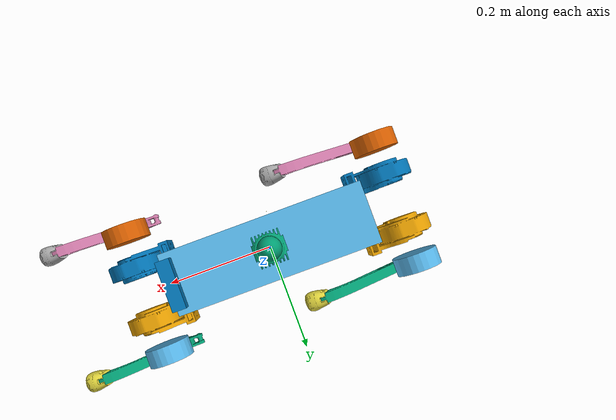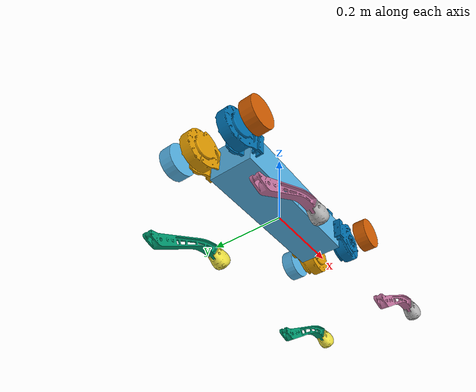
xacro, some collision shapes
<?xml version="1.0"?>

<robot name="hustdog2" xmlns:xacro="http://www.ros.org/wiki/xacro">

    <xacro:arg name="DEBUG" default="false"/>

    <xacro:include filename="const.xacro"/>
    <xacro:include filename="materials.xacro"/>
    <!-- use explicit per-leg definitions that match hustdog2.urdf -->
    <xacro:include filename="legnew.xacro"/>
    <!-- include transmissions so gazebo_ros_control registers effort joints -->
    <xacro:include filename="depthCamera.xacro"/>
    <xacro:include filename="ultraSound.xacro"/>

    <!-- Debug mode will hung up the robot, use "true" or "false" to switch it. -->
    <xacro:if value="$(arg DEBUG)">
        <link name="world"/>
        <joint name="base_static_joint" type="fixed">
            <origin rpy="0 0 0" xyz="0 0 0"/>
            <parent link="world"/>
            <child link="base_link"/>
        </joint>
    </xacro:if>

    <link name="base_link">
        <visual>
            <origin rpy="0 0 0" xyz="0 0 0"/>
            <geometry>
                <box size="0.001 0.001 0.001"/>
            </geometry>
        </visual>
    </link>

    <joint name="base_link_to_trunk" type="fixed">
        <origin rpy="0 0 0" xyz="0 0 0"/>
        <parent link="base_link"/>
        <child link="trunk"/>
    </joint>

    <link name="trunk">
        <visual>
            <origin rpy="0 0 0" xyz="0 0 0"/>
            <geometry>
                <mesh filename="../meshes/trunk.STL" scale="1 1 1"/>
            </geometry>
        </visual>
        <collision>
            <origin rpy="0 0 0" xyz="${trunk_com_x} ${trunk_com_y} ${trunk_com_z}"/>
            <geometry>
                <box size="${trunk_length} ${trunk_width} ${trunk_height}"/>
            </geometry>
        </collision>
        <inertial>
            <origin rpy="0 0 0" xyz="${trunk_com_x} ${trunk_com_y} ${trunk_com_z}"/>
            <mass value="${trunk_mass}"/>
            <inertia
                ixx="${trunk_ixx}" ixy="${trunk_ixy}" ixz="${trunk_ixz}"
                iyy="${trunk_iyy}" iyz="${trunk_iyz}"
                izz="${trunk_izz}"/>
        </inertial>
    </link>

    <!-- LIDAR (aligned to hustdog2.urdf) -->
    <link name="LIDAR">
        <inertial>
            <origin xyz="0.000199578579167744 5.56978729826113E-06 0.0930321007689041" rpy="0 0 0"/>
            <mass value="0.141887346048767"/>
            <inertia ixx="4.17977400205789E-05" ixy="-5.52625156952412E-09" ixz="-3.05328898604069E-07" iyy="4.50773279990884E-05" iyz="4.39725037239413E-10" izz="6.87998253582212E-05"/>
        </inertial>
        <visual>
            <origin xyz="0 0 0" rpy="0 0 0"/>
            <geometry>
                <mesh filename="../meshes/LIDAR.STL" scale="1 1 1"/>
            </geometry>
        </visual>
        <collision>
            <origin xyz="0.000199578579167744 5.56978729826113E-06 0.0930321007689041" rpy="0 0 0"/>
            <geometry>
                <cylinder length="0.04" radius="0.035"/>
            </geometry>
        </collision>
    </link>

    <joint name="LIDAR" type="fixed">
        <origin xyz="0 0 0" rpy="0 0 0"/>
        <parent link="trunk"/>
        <child link="LIDAR"/>
    </joint>

    <joint name="imu_joint" type="fixed">
        <parent link="trunk"/>
        <child link="imu_link"/>
        <origin rpy="0 0 0" xyz="-0.01592 -0.06659 -0.00617"/>
    </joint>

    <link name="imu_link">
        <inertial>
            <mass value="0.001"/>
            <origin rpy="0 0 0" xyz="0 0 0"/>
            <inertia ixx="0.0001" ixy="0" ixz="0" iyy="0.0001" iyz="0" izz="0.0001"/>
        </inertial>
        <visual>
            <origin rpy="0 0 0" xyz="0 0 0"/>
            <geometry>
                <box size="0.001 0.001 0.001"/>
            </geometry>
        </visual>
        <collision>
            <origin rpy="0 0 0" xyz="0 0 0"/>
            <geometry>
                <box size=".001 .001 .001"/>
            </geometry>
        </collision>
    </link>

    <!-- instantiate explicit per-leg macros (match hustdog2.urdf) -->
    <xacro:leg_FR/>
    <xacro:leg_FL/>
    <xacro:leg_RR/>
    <xacro:leg_RL/>

    <!-- Replaced five depthCamera instances with the single CAMERA link from hustdog2.urdf -->
    <xacro:depthCamera camID="1" name="CAMERA"
        xyz="${camera_offset_x} ${camera_offset_y} ${camera_offset_z}"
        visual_xyz="${-camera_offset_x} ${-camera_offset_y} ${-camera_offset_z}">
    </xacro:depthCamera>

</robot>

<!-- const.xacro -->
<robot xmlns:xacro="http://www.ros.org/wiki/xacro">

  <!-- Constants for hustdog2 (merged and normalized) -->
  <xacro:property name="PI" value="3.1415926535897931"/>
  <xacro:property name="stick_mass" value="0.00001"/>

  <!-- visual / collision helpers -->
  <xacro:property name="trunk_width" value="0.114"/>
  <xacro:property name="trunk_length" value="0.3762"/>
  <xacro:property name="trunk_height" value="0.0935"/>
  <xacro:property name="hip_radius" value="0.046"/>
  <xacro:property name="hip_length" value="0.04"/>
  <xacro:property name="thigh_shoulder_radius" value="0.041"/>
  <xacro:property name="thigh_shoulder_length" value="0.032"/>
  <xacro:property name="thigh_width" value="0.0245"/>
  <xacro:property name="thigh_height" value="0.034"/>
  <xacro:property name="calf_width" value="0.016"/>
  <xacro:property name="calf_height" value="0.016"/>
  <xacro:property name="foot_radius" value="0.02"/>
  <xacro:property name="stick_radius" value="0.01"/>
  <xacro:property name="stick_length" value="0.2"/>

  <!-- kinematic / link lengths (values taken from hustdog2.urdf) -->
  <xacro:property name="abad_length" value="0.085"/>
  <xacro:property name="hip_link_length" value="0.072"/> <!-- hip->thigh (URDF joint origin: 0.072 0 0) -->
  <xacro:property name="thigh_length" value="0.072"/> <!-- alias for hip_link_length for compatibility -->
  <xacro:property name="calf_link_length" value="0.22"/> <!-- thigh->calf (URDF joint origin z = -0.22) -->
  <xacro:property name="calf_length" value="0.22"/> <!-- alias for compatibility -->

  <!-- hip / leg offsets relative to trunk center (from URDF hip joint origins) -->
  <xacro:property name="hip_offset_x" value="0.1666"/>
  <xacro:property name="hip_offset_y" value="0.051996"/>
  <xacro:property name="hip_offset_z" value="0.052"/>
  <!-- legacy/alternate names kept for compatibility -->
  <xacro:property name="leg_offset_x" value="0.1666"/>
  <xacro:property name="leg_offset_y" value="0.051996"/>
  <xacro:property name="hip_offset" value="0.072"/>

  <!-- compatibility / convenience: thigh_offset used by leg.xacro (hip->thigh joint origin) -->
  <xacro:property name="thigh_offset" value="${hip_link_length}"/>

  <xacro:property name="hip_lower" value="-0.6674139"/>
  <xacro:property name="hip_upper" value="0.6674139"/>
  <xacro:property name="hip_effort" value="23.7"/>
  <xacro:property name="hip_velocity" value="30.0"/>

  <xacro:property name="thigh_lower" value="-0.1309"/>
  <xacro:property name="thigh_upper" value="1.7017"/>
  <xacro:property name="thigh_effort" value="23.7"/>
  <xacro:property name="thigh_velocity" value="30.0"/>

  <xacro:property name="calf_lower" value="-2.9123"/>
  <xacro:property name="calf_upper" value="-1.2542"/>
  <xacro:property name="calf_effort" value="23.7"/>
  <xacro:property name="calf_velocity" value="30.0"/>

  <xacro:property name="damping" value="0.0"/>
  <xacro:property name="friction" value="0.0"/>

  <!-- compatibility aliases for legacy names used in other xacros -->
  <xacro:property name="hip_torque_max" value="${hip_effort}"/>
  <xacro:property name="hip_velocity_max" value="${hip_velocity}"/>
  <xacro:property name="hip_position_min" value="${hip_lower}"/>
  <xacro:property name="hip_position_max" value="${hip_upper}"/>

  <xacro:property name="thigh_torque_max" value="${thigh_effort}"/>
  <xacro:property name="thigh_velocity_max" value="${thigh_velocity}"/>
  <xacro:property name="thigh_position_min" value="${thigh_lower}"/>
  <xacro:property name="thigh_position_max" value="${thigh_upper}"/>

  <xacro:property name="calf_torque_max" value="${calf_effort}"/>
  <xacro:property name="calf_velocity_max" value="${calf_velocity}"/>
  <xacro:property name="calf_position_min" value="${calf_lower}"/>
  <xacro:property name="calf_position_max" value="${calf_upper}"/>

  <!-- inertial values: trunk, hip, thigh, calf, foot (copied from hustdog2.urdf) -->
  <!-- trunk -->
  <xacro:property name="trunk_mass" value="3.304"/>
  <xacro:property name="trunk_com_x" value="0.00014579412146028"/>
  <xacro:property name="trunk_com_y" value="-8.23603790256226E-05"/>
  <xacro:property name="trunk_com_z" value="0.0513141462721673"/>
  <xacro:property name="trunk_ixx" value="0.00246223133481107"/>
  <xacro:property name="trunk_ixy" value="1.22541568850732E-07"/>
  <xacro:property name="trunk_ixz" value="-1.86486894267769E-09"/>
  <xacro:property name="trunk_iyy" value="0.00300451040783408"/>
  <xacro:property name="trunk_iyz" value="-5.45851421140666E-10"/>
  <xacro:property name="trunk_izz" value="0.00369726469403937"/>

  <!-- hip (FR values used as representative for all hips) -->
  <xacro:property name="hip_mass" value="0.686"/>
  <xacro:property name="hip_com_x" value="0.061695"/>
  <xacro:property name="hip_com_y" value="-0.00025557"/>
  <xacro:property name="hip_com_z" value="7.6332E-05"/>
  <xacro:property name="hip_ixx" value="0.00015606"/>
  <xacro:property name="hip_ixy" value="-9.8829E-08"/>
  <xacro:property name="hip_ixz" value="3.6293E-07"/>
  <xacro:property name="hip_iyy" value="0.00025823"/>
  <xacro:property name="hip_iyz" value="3.0635E-08"/>
  <xacro:property name="hip_izz" value="0.00014337"/>

  <!-- thigh (FR values used as representative) -->
  <xacro:property name="thigh_mass" value="1.027"/>
  <xacro:property name="thigh_com_x" value="-0.00275078934112083"/>
  <xacro:property name="thigh_com_y" value="-0.061797306727413"/>
  <xacro:property name="thigh_com_z" value="-0.0659635539721172"/>
  <xacro:property name="thigh_ixx" value="0.000756603493555017"/>
  <xacro:property name="thigh_ixy" value="-7.92376228187542E-08"/>
  <xacro:property name="thigh_ixz" value="-4.17601614282535E-05"/>
  <xacro:property name="thigh_iyy" value="0.000910075280848094"/>
  <xacro:property name="thigh_iyz" value="-2.00894339422274E-08"/>
  <xacro:property name="thigh_izz" value="0.000175634171715802"/>

  <!-- calf (FR values used as representative) -->
  <xacro:property name="calf_mass" value="0.249"/>
  <xacro:property name="calf_com_x" value="-0.000290700643747477"/>
  <xacro:property name="calf_com_y" value="-0.0849759320544111"/>
  <xacro:property name="calf_com_z" value="-0.0645449884848464"/>
  <xacro:property name="calf_ixx" value="0.000215077167464886"/>
  <xacro:property name="calf_ixy" value="-1.03212973220742E-07"/>
  <xacro:property name="calf_ixz" value="-7.20760001508999E-06"/>
  <xacro:property name="calf_iyy" value="0.000218606842918735"/>
  <xacro:property name="calf_iyz" value="-2.83504164955069E-06"/>
  <xacro:property name="calf_izz" value="6.64639656615067E-06"/>

    <!-- foot (FR values used as representative) -->
  <xacro:property name="foot_mass" value="0.056"/>
  <xacro:property name="foot_com_x" value="-0.00408434501666199"/>
  <xacro:property name="foot_com_y" value="0.0851196204673925"/>
  <xacro:property name="foot_com_z" value="-0.00290914827275929"/>
  <xacro:property name="foot_ixx" value="1.46759140000492E-05"/>
  <xacro:property name="foot_ixy" value="-8.49482435630802E-08"/>
  <xacro:property name="foot_ixz" value="3.07254971706503E-06"/>
  <xacro:property name="foot_iyy" value="1.27945976674806E-05"/>
  <xacro:property name="foot_iyz" value="-3.13456863350562E-08"/>
  <xacro:property name="foot_izz" value="1.40635378188276E-05"/>

  <!-- small rotor prop / compatibility -->
  <!-- rotor offsets (hip/thigh/calf) - provide defaults so leg.xacro references resolve -->
  <xacro:property name="hip_rotor_offset_x" value="0.12"/>
  <xacro:property name="hip_rotor_offset_y" value="0.051996"/>
  <xacro:property name="hip_rotor_offset_z" value="0.0"/>

  <xacro:property name="thigh_rotor_offset_x" value="0.0"/>
  <xacro:property name="thigh_rotor_offset_y" value="0.02"/>
  <xacro:property name="thigh_rotor_offset_z" value="0.0"/>

  <xacro:property name="calf_rotor_offset_x" value="0.0"/>
  <xacro:property name="calf_rotor_offset_y" value="-0.09"/>
  <xacro:property name="calf_rotor_offset_z" value="0.0"/>

  <!-- rotor inertial defaults (small masses and inertias) -->
  <xacro:property name="hip_rotor_mass" value="0.05"/>
  <xacro:property name="hip_rotor_com_x" value="0.0"/>
  <xacro:property name="hip_rotor_com_y" value="0.0"/>
  <xacro:property name="hip_rotor_com_z" value="0.0"/>
  <xacro:property name="hip_rotor_ixx" value="0.00005"/>
  <xacro:property name="hip_rotor_ixy" value="0.0"/>
  <xacro:property name="hip_rotor_ixz" value="0.0"/>
  <xacro:property name="hip_rotor_iyy" value="0.00005"/>
  <xacro:property name="hip_rotor_iyz" value="0.0"/>
  <xacro:property name="hip_rotor_izz" value="0.00005"/>

  <xacro:property name="thigh_rotor_mass" value="0.03"/>
  <xacro:property name="thigh_rotor_com_x" value="0.0"/>
  <xacro:property name="thigh_rotor_com_y" value="0.0"/>
  <xacro:property name="thigh_rotor_com_z" value="0.0"/>
  <xacro:property name="thigh_rotor_ixx" value="0.00003"/>
  <xacro:property name="thigh_rotor_ixy" value="0.0"/>
  <xacro:property name="thigh_rotor_ixz" value="0.0"/>
  <xacro:property name="thigh_rotor_iyy" value="0.00003"/>
  <xacro:property name="thigh_rotor_iyz" value="0.0"/>
  <xacro:property name="thigh_rotor_izz" value="0.00003"/>

  <xacro:property name="calf_rotor_mass" value="0.02"/>
  <xacro:property name="calf_rotor_com_x" value="0.0"/>
  <xacro:property name="calf_rotor_com_y" value="0.0"/>
  <xacro:property name="calf_rotor_com_z" value="0.0"/>
  <xacro:property name="calf_rotor_ixx" value="0.00002"/>
  <xacro:property name="calf_rotor_ixy" value="0.0"/>
  <xacro:property name="calf_rotor_ixz" value="0.0"/>
  <xacro:property name="calf_rotor_iyy" value="0.00002"/>
  <xacro:property name="calf_rotor_iyz" value="0.0"/>
  <xacro:property name="calf_rotor_izz" value="0.00002"/>

  <!-- Camera Offset (Inertial origin from URDF) -->
  <xacro:property name="camera_offset_x" value="0.1775"/>
  <xacro:property name="camera_offset_y" value="0.0"/>
  <xacro:property name="camera_offset_z" value="0.1195004"/>

</robot>

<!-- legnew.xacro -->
<robot xmlns:xacro="http://www.ros.org/wiki/xacro">

  <xacro:macro name="leg_FR" params="">

    <!-- FR hip joint (from trunk to FR_hip) -->
    <joint name="FR_hip_joint" type="revolute">
      <origin rpy="0 0 0" xyz="0.1666 -0.051996 0.052"/>
      <parent link="trunk"/>
      <child link="FR_hip"/>
      <axis xyz="1 0 0"/>
      <dynamics damping="${damping}" friction="${friction}"/>
      <limit lower="${hip_lower}" upper="${hip_upper}" effort="${hip_effort}" velocity="${hip_velocity}"/>
    </joint>

    <link name="FR_hip">
      <visual>
        <origin rpy="0 0 0" xyz="0 0 0"/>
        <geometry>
          <mesh filename="../meshes/FR_hip.STL" scale="1 1 1"/>
        </geometry>
      </visual>
      <collision>
        <origin rpy="0 ${PI/2.0} 0" xyz="0 0 0"/>
        <geometry>
          <cylinder length="${hip_length}" radius="${hip_radius}"/>
        </geometry>
      </collision>
      <inertial>
        <origin rpy="0 0 0" xyz="${hip_com_x} ${hip_com_y} ${hip_com_z}"/>
        <mass value="${hip_mass}"/>
        <inertia ixx="${hip_ixx}" ixy="${hip_ixy}" ixz="${hip_ixz}" iyy="${hip_iyy}" iyz="${hip_iyz}" izz="${hip_izz}"/>
      </inertial>
    </link>

    <!-- FR thigh joint (hip -> thigh) -->
    <joint name="FR_thigh_joint" type="revolute">
      <origin rpy="0 0 0" xyz="0.072 0 0"/>
      <parent link="FR_hip"/>
      <child link="FR_thigh"/>
      <axis xyz="0 1 0"/>
      <dynamics damping="${damping}" friction="${friction}"/>
      <limit lower="${thigh_lower}" upper="${thigh_upper}" effort="${thigh_effort}" velocity="${thigh_velocity}"/>
    </joint>

    <link name="FR_thigh">
      <visual>
        <origin rpy="0 0 0" xyz="0 0 0"/>
        <geometry>
          <mesh filename="../meshes/FR_thigh.STL" scale="1 1 1"/>
        </geometry>
      </visual>
      <collision>
        <origin rpy="${PI/2.0} 0 0" xyz="${thigh_com_x} ${thigh_com_y} ${thigh_com_z+0.065}"/>
        <geometry>
          <cylinder length="${thigh_shoulder_length}" radius="${thigh_shoulder_radius}"/>
        </geometry>
      </collision>
      <collision>
        <origin rpy="0 0 0" xyz="${thigh_com_x} ${thigh_com_y} ${thigh_com_z}"/>
        <geometry>
          <box size="${thigh_width} ${thigh_height} ${calf_link_length}"/>
        </geometry>
      </collision>
      <inertial>
        <origin rpy="0 0 0" xyz="${thigh_com_x} ${thigh_com_y} ${thigh_com_z}"/>
        <mass value="${thigh_mass}"/>
        <inertia ixx="${thigh_ixx}" ixy="${thigh_ixy}" ixz="${thigh_ixz}" iyy="${thigh_iyy}" iyz="${thigh_iyz}" izz="${thigh_izz}"/>
      </inertial>
    </link>

    <!-- FR calf joint (thigh -> calf) -->
    <joint name="FR_calf_joint" type="revolute">
      <origin rpy="0 0 0" xyz="0 0 -0.22"/>
      <parent link="FR_thigh"/>
      <child link="FR_calf"/>
      <axis xyz="0 1 0"/>
      <dynamics damping="${damping}" friction="${friction}"/>
      <limit lower="${calf_lower}" upper="${calf_upper}" effort="${calf_effort}" velocity="${calf_velocity}"/>
    </joint>

    <link name="FR_calf">
      <visual>
        <origin rpy="0 0 0" xyz="0 0 0"/>
        <geometry>
          <mesh filename="../meshes/FR_calf.STL" scale="1 1 1"/>
        </geometry>
      </visual>
      <collision>
        <origin rpy="0 0 0" xyz="${calf_com_x} ${calf_com_y} ${calf_com_z}"/>
        <geometry>
          <box size="${calf_width} ${calf_height} ${calf_length}"/>
        </geometry>
      </collision>
      <inertial>
        <origin rpy="0 0 0" xyz="${calf_com_x} ${calf_com_y} ${calf_com_z}"/>
        <mass value="${calf_mass}"/>
        <inertia ixx="${calf_ixx}" ixy="${calf_ixy}" ixz="${calf_ixz}" iyy="${calf_iyy}" iyz="${calf_iyz}" izz="${calf_izz}"/>
      </inertial>
    </link>

    <!-- FR foot -->
    <joint name="FR_foot_fixed" type="fixed">
      <origin rpy="0 0 0" xyz="-0.029484 0 -0.19799"/>
      <parent link="FR_calf"/>
      <child link="FR_foot"/>
    </joint>
    <link name="FR_foot">
      <visual>
        <origin rpy="0 0 0" xyz="0 0 0"/>
        <geometry>
          <mesh filename="../meshes/FR_foot.STL" scale="1 1 1"/>
        </geometry>
      </visual>
      <collision>
        <origin rpy="0 0 0" xyz="-0.004 -0.085 -0.003"/>
        <geometry>
          <sphere radius="${foot_radius}"/>
        </geometry>
      </collision>
      <inertial>
        <origin rpy="0 0 0" xyz="${foot_com_x} ${foot_com_y} ${foot_com_z}"/>
        <mass value="${foot_mass}"/>
        <inertia ixx="${foot_ixx}" ixy="${foot_ixy}" ixz="${foot_ixz}" iyy="${foot_iyy}" iyz="${foot_iyz}" izz="${foot_izz}"/>
      </inertial>
    </link>

  </xacro:macro>

  <!-- FL: mirror across Y axis (positive y) -->
  <xacro:macro name="leg_FL" params="">
    <!-- FL hip -->
    <joint name="FL_hip_joint" type="revolute">
      <origin rpy="0 0 0" xyz="0.1666 0.051996 0.052"/>
      <parent link="trunk"/>
      <child link="FL_hip"/>
      <axis xyz="1 0 0"/>
      <dynamics damping="${damping}" friction="${friction}"/>
      <limit lower="${hip_lower}" upper="${hip_upper}" effort="${hip_effort}" velocity="${hip_velocity}"/>
    </joint>

    <link name="FL_hip">
      <visual>
        <origin rpy="0 0 0" xyz="0 0 0"/>
        <geometry>
          <mesh filename="../meshes/FL_hip.STL" scale="1 1 1"/>
        </geometry>
      </visual>
      <collision>
        <origin rpy="0 ${PI/2.0} 0" xyz="0 0 0"/>
        <geometry>
          <cylinder length="${hip_length}" radius="${hip_radius}"/>
        </geometry>
      </collision>
      <inertial>
        <origin rpy="0 0 0" xyz="${hip_com_x} ${-hip_com_y} ${hip_com_z}"/>
        <mass value="${hip_mass}"/>
        <inertia ixx="${hip_ixx}" ixy="${hip_ixy}" ixz="${hip_ixz}" iyy="${hip_iyy}" iyz="${hip_iyz}" izz="${hip_izz}"/>
      </inertial>
    </link>

    <!-- thigh -->
    <joint name="FL_thigh_joint" type="revolute">
      <origin rpy="0 0 0" xyz="0.072 0 0"/>
      <parent link="FL_hip"/>
      <child link="FL_thigh"/>
      <axis xyz="0 1 0"/>
      <dynamics damping="${damping}" friction="${friction}"/>
      <limit lower="${thigh_lower}" upper="${thigh_upper}" effort="${thigh_effort}" velocity="${thigh_velocity}"/>
    </joint>

    <link name="FL_thigh">
      <visual>
        <origin rpy="0 0 0" xyz="0 0 0"/>
        <geometry>
          <mesh filename="../meshes/FL_thigh.STL" scale="1 1 1"/>
        </geometry>
      </visual>
      <collision>
        <origin rpy="${PI/2.0} 0 0" xyz="${thigh_com_x} ${-thigh_com_y} ${thigh_com_z+0.065}"/>
        <geometry>
          <cylinder length="${thigh_shoulder_length}" radius="${thigh_shoulder_radius}"/>
        </geometry>
      </collision>
      <collision>
        <origin rpy="0 0 0" xyz="${thigh_com_x} ${-thigh_com_y} ${thigh_com_z}"/>
        <geometry>
          <box size="${thigh_width} ${thigh_height} ${calf_link_length}"/>
        </geometry>
      </collision>
      <inertial>
        <origin rpy="0 0 0" xyz="${thigh_com_x} ${-thigh_com_y} ${thigh_com_z}"/>
        <mass value="${thigh_mass}"/>
        <inertia ixx="${thigh_ixx}" ixy="${thigh_ixy}" ixz="${thigh_ixz}" iyy="${thigh_iyy}" iyz="${thigh_iyz}" izz="${thigh_izz}"/>
      </inertial>
    </link>

    <!-- calf -->
    <joint name="FL_calf_joint" type="revolute">
      <origin rpy="0 0 0" xyz="0 0 -0.22"/>
      <parent link="FL_thigh"/>
      <child link="FL_calf"/>
      <axis xyz="0 1 0"/>
      <dynamics damping="${damping}" friction="${friction}"/>
      <limit lower="${calf_lower}" upper="${calf_upper}" effort="${calf_effort}" velocity="${calf_velocity}"/>
    </joint>

    <link name="FL_calf">
      <visual>
        <origin rpy="0 0 0" xyz="0 0 0"/>
        <geometry>
          <mesh filename="../meshes/FL_calf.STL" scale="1 1 1"/>
        </geometry>
      </visual>
      <collision>
        <origin rpy="0 0 0" xyz="${calf_com_x} ${-calf_com_y} ${calf_com_z}"/>
        <geometry>
          <box size="${calf_width} ${calf_height} ${calf_length}"/>
        </geometry>
      </collision>
      <inertial>
        <origin rpy="0 0 0" xyz="${calf_com_x} ${-calf_com_y} ${calf_com_z}"/>
        <mass value="${calf_mass}"/>
        <inertia ixx="${calf_ixx}" ixy="${calf_ixy}" ixz="${calf_ixz}" iyy="${calf_iyy}" iyz="${calf_iyz}" izz="${calf_izz}"/>
      </inertial>
    </link>

    <joint name="FL_foot_fixed" type="fixed">
      <origin rpy="0 0 0" xyz="-0.029481 0 -0.19799"/>
      <parent link="FL_calf"/>
      <child link="FL_foot"/>
    </joint>
    <link name="FL_foot">
      <visual>
        <origin rpy="0 0 0" xyz="0 0 0"/>
        <geometry>
          <mesh filename="../meshes/FL_foot.STL" scale="1 1 1"/>
        </geometry>
      </visual>
      <collision>
        <origin rpy="0 0 0" xyz="-0.004 0.085 -0.003"/>
        <geometry>
          <sphere radius="${foot_radius}"/>
        </geometry>
      </collision>
      <inertial>
        <origin rpy="0 0 0" xyz="${foot_com_x} ${-foot_com_y} ${foot_com_z}"/>
        <mass value="${foot_mass}"/>
        <inertia ixx="${foot_ixx}" ixy="${foot_ixy}" ixz="${foot_ixz}" iyy="${foot_iyy}" iyz="${foot_iyz}" izz="${foot_izz}"/>
      </inertial>
    </link>

  </xacro:macro>

  <!-- RR: rear-right -->
  <xacro:macro name="leg_RR" params="">
    <joint name="RR_hip_joint" type="revolute">
      <origin rpy="0 0 0" xyz="-0.1666 -0.051996 0.052"/>
      <parent link="trunk"/>
      <child link="RR_hip"/>
      <axis xyz="1 0 0"/>
      <dynamics damping="${damping}" friction="${friction}"/>
      <limit lower="${hip_lower}" upper="${hip_upper}" effort="${hip_effort}" velocity="${hip_velocity}"/>
    </joint>

    <link name="RR_hip">
      <visual>
        <origin rpy="3.141592653589793 0 0" xyz="0 0 0"/>
        <geometry>
          <mesh filename="../meshes/RR_hip.STL" scale="1 1 1"/>
        </geometry>
      </visual>
      <collision>
        <origin rpy="0 ${PI/2.0} 0" xyz="0 0 0"/>
        <geometry>
          <cylinder length="${hip_length}" radius="${hip_radius}"/>
        </geometry>
      </collision>
      <inertial>
        <origin rpy="0 0 0" xyz="${hip_com_x} ${hip_com_y} ${hip_com_z}"/>
        <mass value="${hip_mass}"/>
        <inertia ixx="${hip_ixx}" ixy="${hip_ixy}" ixz="${hip_ixz}" iyy="${hip_iyy}" iyz="${hip_iyz}" izz="${hip_izz}"/>
      </inertial>
    </link>

    <joint name="RR_thigh_joint" type="revolute">
      <origin rpy="0 0 0" xyz="-0.072 0 0"/>
      <parent link="RR_hip"/>
      <child link="RR_thigh"/>
      <axis xyz="0 1 0"/>
      <dynamics damping="${damping}" friction="${friction}"/>
      <limit lower="${thigh_lower}" upper="${thigh_upper}" effort="${thigh_effort}" velocity="${thigh_velocity}"/>
    </joint>

    <link name="RR_thigh">
      <visual>
        <origin rpy="0 0 0" xyz="0 0 0"/>
        <geometry>
          <mesh filename="../meshes/RR_thigh.STL" scale="1 1 1"/>
        </geometry>
      </visual>
      <collision>
        <origin rpy="${PI/2.0} 0 0" xyz="${thigh_com_x} ${thigh_com_y} ${thigh_com_z+0.065}"/>
        <geometry>
          <cylinder length="${thigh_shoulder_length}" radius="${thigh_shoulder_radius}"/>
        </geometry>
      </collision>
      <collision>
        <origin rpy="0 0 0" xyz="${thigh_com_x} ${thigh_com_y} ${thigh_com_z}"/>
        <geometry>
          <box size="${thigh_width} ${thigh_height} ${calf_link_length}"/>
        </geometry>
      </collision>
      <inertial>
        <origin rpy="0 0 0" xyz="${thigh_com_x} ${thigh_com_y} ${thigh_com_z}"/>
        <mass value="${thigh_mass}"/>
        <inertia ixx="${thigh_ixx}" ixy="${thigh_ixy}" ixz="${thigh_ixz}" iyy="${thigh_iyy}" iyz="${thigh_iyz}" izz="${thigh_izz}"/>
      </inertial>
    </link>

    <joint name="RR_calf_joint" type="revolute">
      <origin rpy="0 0 0" xyz="0 0 -0.22"/>
      <parent link="RR_thigh"/>
      <child link="RR_calf"/>
      <axis xyz="0 1 0"/>
      <dynamics damping="${damping}" friction="${friction}"/>
      <limit lower="${calf_lower}" upper="${calf_upper}" effort="${calf_effort}" velocity="${calf_velocity}"/>
    </joint>

    <link name="RR_calf">
      <visual>
        <origin rpy="0 0 0" xyz="0 0 0"/>
        <geometry>
          <mesh filename="../meshes/RR_calf.STL" scale="1 1 1"/>
        </geometry>
      </visual>
      <collision>
        <origin rpy="0 0 0" xyz="${calf_com_x} ${calf_com_y} ${calf_com_z}"/>
        <geometry>
          <box size="${calf_width} ${calf_height} ${calf_length}"/>
        </geometry>
      </collision>
      <inertial>
        <origin rpy="0 0 0" xyz="${calf_com_x} ${calf_com_y} ${calf_com_z}"/>
        <mass value="${calf_mass}"/>
        <inertia ixx="${calf_ixx}" ixy="${calf_ixy}" ixz="${calf_ixz}" iyy="${calf_iyy}" iyz="${calf_iyz}" izz="${calf_izz}"/>
      </inertial>
    </link>

    <joint name="RR_foot_fixed" type="fixed">
      <origin rpy="0 0 0" xyz="-0.029484 0 -0.19799"/>
      <parent link="RR_calf"/>
      <child link="RR_foot"/>
    </joint>
    <link name="RR_foot">
      <visual>
        <origin rpy="0 0 0" xyz="0 0 0"/>
        <geometry>
          <mesh filename="../meshes/RR_foot.STL" scale="1 1 1"/>
        </geometry>
      </visual>
      <collision>
        <origin rpy="0 0 0" xyz="-0.004 -0.085 -0.003"/>
        <!-- RR (Right Rear) foot offset: Y is negative? -->
        <geometry>
          <sphere radius="${foot_radius}"/>
        </geometry>
      </collision>
      <inertial>
        <origin rpy="0 0 0" xyz="${foot_com_x} ${foot_com_y} ${foot_com_z}"/>
        <mass value="${foot_mass}"/>
        <inertia ixx="${foot_ixx}" ixy="${foot_ixy}" ixz="${foot_ixz}" iyy="${foot_iyy}" iyz="${foot_iyz}" izz="${foot_izz}"/>
      </inertial>
    </link>

  </xacro:macro>

  <!-- RL: rear-left -->
  <xacro:macro name="leg_RL" params="">
    <joint name="RL_hip_joint" type="revolute">
      <origin rpy="0 0 0" xyz="-0.1666 0.051996 0.052"/>
      <parent link="trunk"/>
      <child link="RL_hip"/>
      <axis xyz="1 0 0"/>
      <dynamics damping="${damping}" friction="${friction}"/>
      <limit lower="${hip_lower}" upper="${hip_upper}" effort="${hip_effort}" velocity="${hip_velocity}"/>
    </joint>

    <link name="RL_hip">
      <visual>
        <origin rpy="0 0 0" xyz="0 0 0"/>
        <geometry>
          <mesh filename="../meshes/RL_hip.STL" scale="1 1 1"/>
        </geometry>
      </visual>
      <collision>
        <origin rpy="0 ${PI/2.0} 0" xyz="0 0 0"/>
        <geometry>
          <cylinder length="${hip_length}" radius="${hip_radius}"/>
        </geometry>
      </collision>
      <inertial>
        <origin rpy="0 0 0" xyz="${hip_com_x} ${-hip_com_y} ${hip_com_z}"/>
        <mass value="${hip_mass}"/>
        <inertia ixx="${hip_ixx}" ixy="${hip_ixy}" ixz="${hip_ixz}" iyy="${hip_iyy}" iyz="${hip_iyz}" izz="${hip_izz}"/>
      </inertial>
    </link>

    <joint name="RL_thigh_joint" type="revolute">
      <origin rpy="0 0 0" xyz="-0.072 0 0"/>
      <parent link="RL_hip"/>
      <child link="RL_thigh"/>
      <axis xyz="0 1 0"/>
      <dynamics damping="${damping}" friction="${friction}"/>
      <limit lower="${thigh_lower}" upper="${thigh_upper}" effort="${thigh_effort}" velocity="${thigh_velocity}"/>
    </joint>

    <link name="RL_thigh">
      <visual>
        <origin rpy="0 0 0" xyz="0 0 0"/>
        <geometry>
          <mesh filename="../meshes/RL_thigh.STL" scale="1 1 1"/>
        </geometry>
      </visual>
      <collision>
        <origin rpy="${PI/2.0} 0 0" xyz="${thigh_com_x} ${-thigh_com_y} ${thigh_com_z+0.065}"/>
        <geometry>
          <cylinder length="${thigh_shoulder_length}" radius="${thigh_shoulder_radius}"/>
        </geometry>
      </collision>
      <collision>
        <origin rpy="0 0 0" xyz="${thigh_com_x} ${-thigh_com_y} ${thigh_com_z}"/>
        <geometry>
          <box size="${thigh_width} ${thigh_height} ${calf_link_length}"/>
        </geometry>
      </collision>
      <inertial>
        <origin rpy="0 0 0" xyz="${thigh_com_x} ${-thigh_com_y} ${thigh_com_z}"/>
        <mass value="${thigh_mass}"/>
        <inertia ixx="${thigh_ixx}" ixy="${thigh_ixy}" ixz="${thigh_ixz}" iyy="${thigh_iyy}" iyz="${thigh_iyz}" izz="${thigh_izz}"/>
      </inertial>
    </link>

    <joint name="RL_calf_joint" type="revolute">
      <origin rpy="0 0 0" xyz="0 0 -0.22"/>
      <parent link="RL_thigh"/>
      <child link="RL_calf"/>
      <axis xyz="0 1 0"/>
      <dynamics damping="${damping}" friction="${friction}"/>
      <limit lower="${calf_lower}" upper="${calf_upper}" effort="${calf_effort}" velocity="${calf_velocity}"/>
    </joint>

    <link name="RL_calf">
      <visual>
        <origin rpy="0 0 0" xyz="0 0 0"/>
        <geometry>
          <mesh filename="../meshes/RL_calf.STL" scale="1 1 1"/>
        </geometry>
      </visual>
      <collision>
        <origin rpy="0 0 0" xyz="${calf_com_x} ${-calf_com_y} ${calf_com_z}"/>
        <geometry>
          <box size="${calf_width} ${calf_height} ${calf_length}"/>
        </geometry>
      </collision>
      <inertial>
        <origin rpy="0 0 0" xyz="${calf_com_x} ${-calf_com_y} ${calf_com_z}"/>
        <mass value="${calf_mass}"/>
        <inertia ixx="${calf_ixx}" ixy="${calf_ixy}" ixz="${calf_ixz}" iyy="${calf_iyy}" iyz="${calf_iyz}" izz="${calf_izz}"/>
      </inertial>
    </link>

    <joint name="RL_foot_fixed" type="fixed">
      <origin rpy="0 0 0" xyz="-0.029481 0 -0.19799"/>
      <parent link="RL_calf"/>
      <child link="RL_foot"/>
    </joint>
    <link name="RL_foot">
      <visual>
        <origin rpy="0 0 0" xyz="0 0 0"/>
        <geometry>
          <mesh filename="../meshes/RL_foot.STL" scale="1 1 1"/>
        </geometry>
      </visual>
      <collision>
        <origin rpy="0 0 0" xyz="-0.004 0.085 -0.003"/>
        <geometry>
          <sphere radius="${foot_radius}"/>
        </geometry>
      </collision>
      <inertial>
        <origin rpy="0 0 0" xyz="${foot_com_x} ${foot_com_y} ${foot_com_z}"/>
        <mass value="${foot_mass}"/>
        <inertia ixx="${foot_ixx}" ixy="${foot_ixy}" ixz="${foot_ixz}" iyy="${foot_iyy}" iyz="${foot_iyz}" izz="${foot_izz}"/>
      </inertial>
    </link>

  </xacro:macro>

</robot>

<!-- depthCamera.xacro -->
<robot xmlns:xacro="http://www.ros.org/wiki/xacro">
    <xacro:macro name="depthCamera" params="camID name xyz rpy:='0 0 0' visual_xyz:='0 0 0'">
        <joint name="camera_joint_${name}" type="fixed">
            <origin xyz="${xyz}" rpy="${rpy}"/>
            <parent link="trunk"/>
            <child link="camera_${name}"/>
        </joint>

        <link name="camera_${name}">
            <collision>
            <origin xyz="0 0 0" rpy="0 0 0"/>
            <geometry>
                <box size=".001 .001 .001"/>
            </geometry>
            </collision>

            <visual>
            <origin xyz="${visual_xyz}" rpy="0 0 0"/>
            <geometry>
                <!-- ORIGINAL: Lidar mesh kept as comment for safety -->
                <!-- Use CAMERA mesh for depth camera visuals -->
                <mesh filename="../meshes/CAMERA.STL" scale="1 1 1"/>
            </geometry>
            </visual>

            <inertial>
            <mass value="1e-5" />
            <origin xyz="0 0 0" rpy="0 0 0"/>
            <inertia ixx="1e-6" ixy="0" ixz="0" iyy="1e-6" iyz="0" izz="1e-6" />
            </inertial>
        </link>

        <joint name="camera_optical_joint_${name}" type="fixed">
            <origin xyz="0 0 0" rpy="${-pi/2} 0 ${-pi/2}"/>
            <parent link="camera_${name}"/>
            <child link="camera_optical_${name}"/>
        </joint>

        <link name="camera_optical_${name}">
        </link>

        <gazebo reference="camera_${name}">
            <sensor name="camera_${name}_camera" type="depth">
                <update_rate>16</update_rate>
                <camera>
                    <horizontal_fov>2.094</horizontal_fov>
                    <image>
                        <width>928</width>
                        <height>800</height>
                        <format>R8G8B8</format>
                    </image>
                    <clip>
                        <near>0.1</near>
                        <far>5</far>
                    </clip>
                </camera>
                <plugin name="camera_${name}_controller" filename="libgazebo_ros_openni_kinect.so">
                    <baseline>0.025</baseline>
                    <alwaysOn>true</alwaysOn>
                    <updateRate>0.0</updateRate>
                    <cameraName>camera_${name}_ir</cameraName>
                    <imageTopicName>/camera_${name}/color/image_raw</imageTopicName>
                    <cameraInfoTopicName>/camera_${name}/color/camera_info</cameraInfoTopicName>
                    <depthImageTopicName>/camera_${name}/depth/image_raw</depthImageTopicName>
                    <depthImageInfoTopicName>/camera_${name}/depth/camera_info</depthImageInfoTopicName>
                    <pointCloudTopicName>/cam${camID}/point_cloud_${name}</pointCloudTopicName>
                    <frameName>camera_optical_${name}</frameName>
                    <pointCloudCutoff>0.1</pointCloudCutoff>
                    <pointCloudCutoffMax>1.5</pointCloudCutoffMax>
                    <distortionK1>0.0</distortionK1>
                    <distortionK2>0.0</distortionK2>
                    <distortionK3>0.0</distortionK3>
                    <distortionT1>0.0</distortionT1>
                    <distortionT2>0.0</distortionT2>
                    <CxPrime>0</CxPrime>
                    <Cx>0.0045</Cx>
                    <Cy>0.0039</Cy>
                    <focalLength>0</focalLength>
                    <hackBaseline>0</hackBaseline>
                </plugin>
            </sensor>
        </gazebo>

    </xacro:macro>
</robot>
